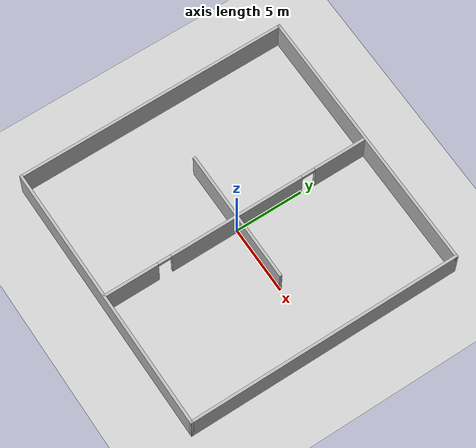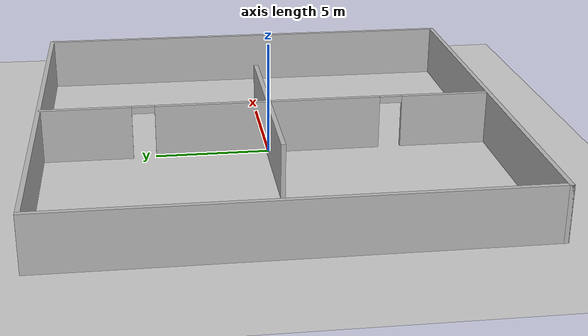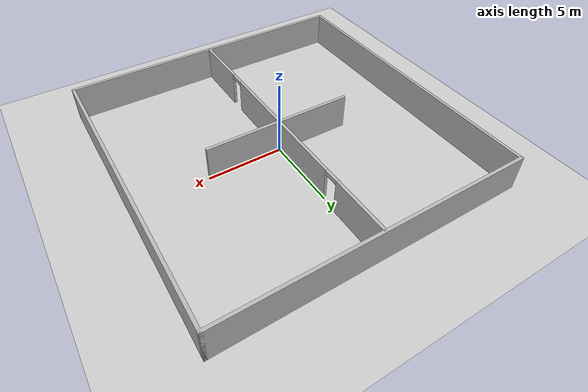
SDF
<sdf version="1.6">
 <world name="world">
  <plugin name="gazebo_ros_state" filename="libgazebo_ros_state.so">
   <ros>
    <namespace>/demo</namespace>
    <remapping>model_states:=model_states_demo</remapping>
    <remapping>link_states:=link_states_demo</remapping>
   </ros>
   <update_rate>1.0</update_rate>
  </plugin>
  <gravity>0 0 -9.8</gravity>
  <physics default="0" name="default_physics" type="ode">
   <max_step_size>0.001</max_step_size>
   <real_time_factor>1</real_time_factor>
   <real_time_update_rate>1000</real_time_update_rate>
  </physics>
  <scene><ambient>0.6 0.6 0.6 1</ambient><background>0.4 0.4 0.4 1</background><shadows>false</shadows></scene>
  <include><uri>model://sun</uri></include>
  <include><uri>model://ground_plane</uri><pose>0 0 -0.1 0 -0 0</pose></include>
  <model name="left_corridor_wall">
   <allow_auto_disable>false</allow_auto_disable>
   <static>true</static>
   <pose>10 0 1.2 0 0 0</pose>
   <static>true</static>
   <link name="left_corridor_wall_link">
    <collision name="left_corridor_wall_collision">
     <geometry><box><size>0.2 20.2 2.4</size></box></geometry>
    </collision>
    <visual name="left_corridor_wall_visual"><geometry><box><size>0.2 20.2 2.4</size></box></geometry></visual>
   </link>
  </model>
  <model name="right_corridor_wall">
   <allow_auto_disable>false</allow_auto_disable>
   <static>true</static>
   <pose>-10 0 1.2 0 0 0</pose>
   <static>true</static>
   <link name="right_corridor_wall_link">
    <collision name="right_corridor_wall_collision">
     <geometry><box><size>0.2 20.2 2.4</size></box></geometry>
    </collision>
    <visual name="right_corridor_wall_visual"><geometry><box><size>0.2 20.2 2.4</size></box></geometry></visual>
   </link>
  </model>
  <model name="upper_corridor_wall">
   <allow_auto_disable>false</allow_auto_disable>
   <static>true</static>
   <pose>0 -10 1.2 0 0 0</pose>
   <static>true</static>
   <link name="upper_corridor_wall_link">
    <collision name="upper_corridor_wall_collision">
     <geometry><box><size>20.2 0.2 2.4</size></box></geometry>
    </collision>
    <visual name="upper_corridor_wall_visual"><geometry><box><size>20.2 0.2 2.4</size></box></geometry></visual>
   </link>
  </model>
  <model name="bottom_corridor_wall">
   <allow_auto_disable>false</allow_auto_disable>
   <static>true</static>
   <pose>0 10 1.2 0 0 0</pose>
   <static>true</static>
   <link name="bottom_corridor_wall_link">
    <collision name="bottom_corridor_wall_collision">
     <geometry><box><size>20.2 0.2 2.4</size></box></geometry>
    </collision>
    <visual name="upper_corridor_wall_visual"><geometry><box><size>20.2 0.2 2.4</size></box></geometry></visual>
   </link>
  </model>
  <model name="central_wall_1">
   <allow_auto_disable>false</allow_auto_disable>
   <static>true</static>
   <pose>0 0 1.2 0 0 0</pose>
   <static>true</static>
   <link name="central_wall_1_link">
    <collision name="central_wall_1_collision"><geometry><box><size>10 0.2 2.4</size></box></geometry></collision>
    <visual name="central_wall_1_visual"><geometry><box><size>10 0.2 2.4</size></box></geometry></visual>
   </link>
  </model>
  <model name="central_wall_2">
   <allow_auto_disable>false</allow_auto_disable>
   <static>true</static>
   <pose>0 0 1.2 0 0 0</pose>
   <static>true</static>
   <link name="central_wall_2_link">
    <collision name="central_wall_2_collision"><geometry><box><size>0.2 10 2.4</size></box></geometry></collision>
    <visual name="central_wall_2_visual"><geometry><box><size>0.2 10 2.4</size></box></geometry></visual>
   </link>
  </model>
  <model name="architrave_south">
   <allow_auto_disable>false</allow_auto_disable>
   <static>true</static>
   <pose>0 5.5 2.25 0 0 0</pose>
   <static>true</static>
   <link name="architrave_south_link">
    <collision name="architrave_south_collision">
     <geometry><box><size>0.2 1 0.3</size></box></geometry>
    </collision>
    <visual name="architrave_south_visual"><geometry><box><size>0.2 1 0.3</size></box></geometry></visual>
   </link>
  </model>
  <model name="architrave_north">
   <allow_auto_disable>false</allow_auto_disable>
   <static>true</static>
   <pose>0 -5.5 2.25 0 0 0</pose>
   <static>true</static>
   <link name="architrave_north_link">
    <collision name="architrave_north_collision">
     <geometry><box><size>0.2 1 0.3</size></box></geometry>
    </collision>
    <visual name="architrave_north_visual"><geometry><box><size>0.2 1 0.3</size></box></geometry></visual>
   </link>
  </model>
  <model name="south_wall">
   <allow_auto_disable>false</allow_auto_disable>
   <static>true</static>
   <pose>0 8 1.2 0 0 0</pose>
   <static>true</static>
   <link name="south_wall_link">
    <collision name="south_wall_collision"><geometry><box><size>0.2 4 2.4</size></box></geometry></collision>
    <visual name="south_wall_visual"><geometry><box><size>0.2 4 2.4</size></box></geometry></visual>
   </link>
  </model>
  <model name="north_wall">
   <allow_auto_disable>false</allow_auto_disable>
   <static>true</static>
   <pose>0 -8 1.2 0 0 0</pose>
   <static>true</static>
   <link name="north_wall_link">
    <collision name="north_wall_collision"><geometry><box><size>0.2 4 2.4</size></box></geometry></collision>
    <visual name="north_wall_visual"><geometry><box><size>0.2 4 2.4</size></box></geometry></visual>
   </link>
  </model>
 </world>
</sdf>
